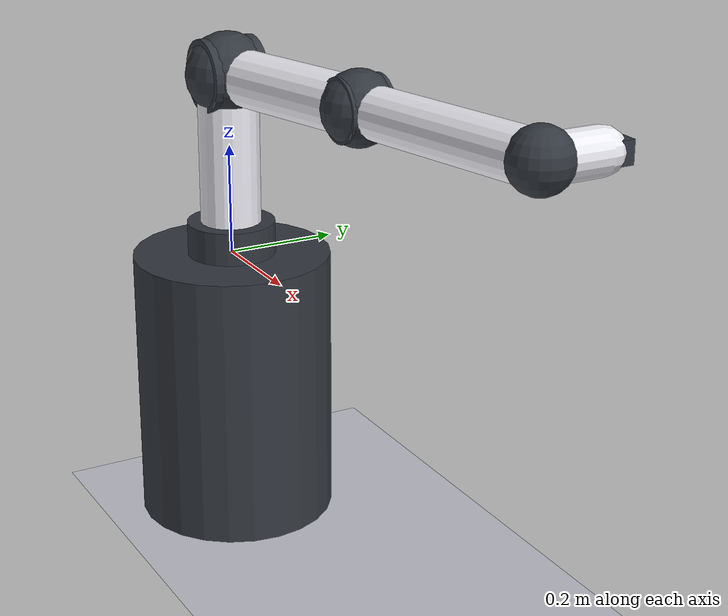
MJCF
<mujoco model="franka_7dof">
  <compiler angle="radian" coordinate="local"/>

  <visual>
    <headlight ambient="0.4 0.4 0.4" diffuse="0.8 0.8 0.8" specular="0.2 0.2 0.2"/>
    <global offwidth="1280" offheight="720"/>
  </visual>

  <asset>
    <texture type="skybox" builtin="gradient" rgb1="0.3 0.5 0.7" rgb2="0.1 0.15 0.2" width="512" height="512"/>
    <texture name="grid" type="2d" builtin="checker" width="512" height="512" rgb1="0.85 0.85 0.88" rgb2="0.65 0.65 0.7"/>
    <material name="grid_mat" texture="grid" texrepeat="5 5" reflectance="0.2"/>
    <material name="franka_white" rgba="0.92 0.92 0.95 1" specular="0.6" shininess="0.8"/>
    <material name="franka_dark" rgba="0.2 0.22 0.25 1" specular="0.4" shininess="0.5"/>
    <material name="accent_blue" rgba="0.2 0.5 0.9 1" specular="0.5" shininess="0.7"/>
    <material name="ee_mat" rgba="0.1 0.85 0.2 1" specular="0.8" shininess="1.0"/>
  </asset>

  <worldbody>
    <light diffuse="0.8 0.8 0.8" pos="1 1 4" dir="-0.3 -0.3 -1"/>
    <!-- Ground plane placed at z = -0.5m so arm has full clearance -->
    <geom name="floor" type="plane" pos="0 0 -0.5" size="5 5 0.1" material="grid_mat"/>

    <!-- Base link mounted on a sturdy pedestal stand -->
    <body name="base_link" pos="0 0 0">
      <geom name="base_pedestal" type="cylinder" size="0.18 0.25" pos="0 0 -0.25" material="franka_dark"/>

      <!-- Link 1 (Joint 1) -->
      <!-- DH 0: alpha=0, a=0, d=0.33 -->
      <body name="link1" pos="0 0 0">
        <joint name="joint1" type="hinge" axis="0 0 1"/>
        <geom name="j1_geom" type="cylinder" size="0.08 0.06" material="franka_dark"/>
        <geom name="l1_geom" type="capsule" fromto="0 0 0 0 0 0.33" size="0.055" material="franka_white"/>

        <!-- Link 2 (Joint 2) -->
        <!-- DH 1: alpha=-pi/2, a=0, d=0 -->
        <body name="link2" pos="0 0 0.33" euler="0 0 0">
          <joint name="joint2" type="hinge" axis="0 0 1"/>
          <geom name="j2_geom" type="sphere" size="0.075" material="franka_dark"/>

          <!-- Link 3 (Joint 3) -->
          <!-- DH 2: alpha=pi/2, a=0.316, d=0.088 -->
          <body name="link3" pos="0 0 0" euler="-1.5707963267948966 0 0">
            <joint name="joint3" type="hinge" axis="0 0 1"/>
            <geom name="j3_geom" type="cylinder" size="0.065 0.05" material="franka_dark"/>
            <geom name="l3_geom" type="capsule" fromto="0 0 0 0.316 0 0.088" size="0.05" material="franka_white"/>

            <!-- Link 4 (Joint 4) -->
            <!-- DH 3: alpha=-pi/2, a=0, d=0 -->
            <body name="link4" pos="0.316 0 0.088" euler="1.5707963267948966 0 0">
              <joint name="joint4" type="hinge" axis="0 0 1"/>
              <geom name="j4_geom" type="sphere" size="0.065" material="franka_dark"/>

              <!-- Link 5 (Joint 5) -->
              <!-- DH 4: alpha=pi/2, a=0.384, d=0.088 -->
              <body name="link5" pos="0 0 0" euler="-1.5707963267948966 0 0">
                <joint name="joint5" type="hinge" axis="0 0 1"/>
                <geom name="j5_geom" type="cylinder" size="0.055 0.04" material="franka_dark"/>
                <geom name="l5_geom" type="capsule" fromto="0 0 0 0.384 0 0.088" size="0.045" material="franka_white"/>

                <!-- Link 6 (Joint 6) -->
                <!-- DH 5: alpha=-pi/2, a=0, d=0 -->
                <body name="link6" pos="0.384 0 0.088" euler="1.5707963267948966 0 0">
                  <joint name="joint6" type="hinge" axis="0 0 1"/>
                  <geom name="j6_geom" type="sphere" size="0.055" material="franka_dark"/>

                  <!-- Link 7 (Joint 7) -->
                  <!-- DH 6: alpha=pi/2, a=0, d=0.107 -->
                  <body name="link7" pos="0 0 0" euler="-1.5707963267948966 0 0">
                    <joint name="joint7" type="hinge" axis="0 0 1"/>
                    <geom name="j7_geom" type="cylinder" size="0.045 0.03" material="franka_dark"/>
                    <geom name="l7_geom" type="capsule" fromto="0 0 0 0 0 0.107" size="0.04" material="franka_white"/>

                    <!-- End-Effector Tool Flange -->
                    <body name="ee_body" pos="0 0 0.107" euler="1.5707963267948966 0 0">
                      <geom name="hand" type="box" size="0.03 0.04 0.02" material="franka_dark"/>
                      <site name="end_effector" pos="0 0 0" size="0.025" material="ee_mat" type="sphere"/>
                    </body>
                  </body>
                </body>
              </body>
            </body>
          </body>
        </body>
      </body>
    </body>

    <!-- Fixed Cameras -->
    <camera name="workspace_view" pos="1.6 -1.6 1.4" xyaxes="0.71 0.71 0 -0.41 0.41 0.82"/>
    <camera name="front_view" pos="0 -2.0 0.8" xyaxes="1 0 0 0 0.38 0.92"/>
  </worldbody>
</mujoco>
